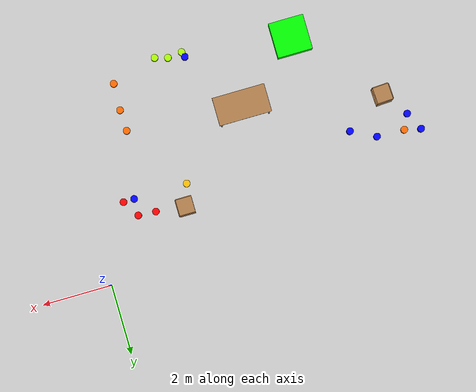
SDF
<sdf version="1.6">
 <world name="default">
  <model name="ground_plane">
   <static>1</static>
   <link name="link">
    <collision name="collision">
     <geometry><plane><normal>0 0 1</normal><size>100 100</size></plane></geometry>
     <surface>
      <contact><collide_bitmask>65535</collide_bitmask></contact>
      <friction><ode><mu>100</mu><mu2>50</mu2></ode></friction>
     </surface>
    </collision>
    <visual name="visual">
     <cast_shadows>0</cast_shadows>
     <geometry><plane><normal>0 0 1</normal><size>100 100</size></plane></geometry>
     <material>
      <script><uri>file://media/materials/scripts/gazebo.material</uri><name>Gazebo/Grey</name></script>
     </material>
    </visual>
   </link>
  </model>
  <model name="green_box">
   <link name="link_0">
    <inertial>
     <mass>1</mass>
     <inertia>
      <ixx>0.166667</ixx>
      <ixy>0</ixy>
      <ixz>0</ixz>
      <iyy>0.166667</iyy>
      <iyz>0</iyz>
      <izz>0.166667</izz>
     </inertia>
    </inertial>
    <visual name="visual">
     <geometry><box><size>1 0.999998 1</size></box></geometry>
     <material>
      <lighting>1</lighting>
      <script><uri>file://media/materials/scripts/gazebo.material</uri><name>Gazebo/Grey</name></script>
      <shader type="vertex"><normal_map>__default__</normal_map></shader>
      <ambient>0 1 0 1</ambient>
      <diffuse>0 1 0 1</diffuse>
      <specular>0 1 0 1</specular>
      <emissive>0 0 0 1</emissive>
     </material>
    </visual>
    <collision name="collision">
     <geometry><box><size>1 0.999998 1</size></box></geometry>
     <surface>
      <friction>
       <ode><mu>1</mu><mu2>1</mu2><fdir1>0 0 0</fdir1><slip1>0</slip1><slip2>0</slip2></ode>
       <torsional>
        <coefficient>1</coefficient>
        <patch_radius>0</patch_radius>
        <surface_radius>0</surface_radius>
        <use_patch_radius>1</use_patch_radius>
        <ode><slip>0</slip></ode>
       </torsional>
      </friction>
      <bounce><restitution_coefficient>0</restitution_coefficient><threshold>1e+06</threshold></bounce>
      <contact>
       <collide_without_contact>0</collide_without_contact>
       <collide_without_contact_bitmask>1</collide_without_contact_bitmask>
       <collide_bitmask>1</collide_bitmask>
       <ode>
        <soft_cfm>0</soft_cfm>
        <soft_erp>0.2</soft_erp>
        <kp>1e+13</kp>
        <kd>1</kd>
        <max_vel>0.01</max_vel>
        <min_depth>0</min_depth>
       </ode>
       <bullet>
        <split_impulse>1</split_impulse>
        <split_impulse_penetration_threshold>-0.01</split_impulse_penetration_threshold>
        <soft_cfm>0</soft_cfm>
        <soft_erp>0.2</soft_erp>
        <kp>1e+13</kp>
        <kd>1</kd>
       </bullet>
      </contact>
     </surface>
    </collision>
   </link>
   <static>1</static>
   <pose>-6.72017 -5.2953 0 0 -0 0</pose>
  </model>
  <model name="cabinet">
   <static>1</static>
   <link name="cabinet_bottom_plate">
    <inertial>
     <pose>0 0 -1 0 -0 0</pose>
     <inertia><ixx>2.05</ixx><ixy>0</ixy><ixz>0</ixz><iyy>2.05</iyy><iyz>0</iyz><izz>2.05</izz></inertia>
     <mass>25</mass>
    </inertial>
    <collision name="cabinet_bottom_plate_geom">
     <pose>0 0 0.01 0 -0 0</pose>
     <geometry><box><size>0.45 0.45 0.02</size></box></geometry>
    </collision>
    <visual name="cabinet_bottom_plate_geom_visual">
     <pose>0 0 0.01 0 -0 0</pose>
     <geometry><box><size>0.45 0.45 0.02</size></box></geometry>
     <material>
      <script><uri>file://media/materials/scripts/gazebo.material</uri><name>Gazebo/Wood</name></script>
     </material>
    </visual>
    <collision name="cabinet_bottom_plate_geom_cabinet_back_plate">
     <pose>0.235 0 0.51 0 -0 0</pose>
     <geometry><box><size>0.02 0.45 1.02</size></box></geometry>
    </collision>
    <visual name="cabinet_bottom_plate_geom_cabinet_back_plate_visual">
     <pose>0.235 0 0.51 0 -0 0</pose>
     <geometry><box><size>0.02 0.45 1.02</size></box></geometry>
     <material>
      <script><uri>file://media/materials/scripts/gazebo.material</uri><name>Gazebo/Wood</name></script>
     </material>
    </visual>
    <collision name="cabinet_bottom_plate_geom_cabinet_left_plate">
     <pose>0 0.235 0.51 0 -0 0</pose>
     <geometry><box><size>0.45 0.02 1.02</size></box></geometry>
    </collision>
    <visual name="cabinet_bottom_plate_geom_cabinet_left_plate_visual">
     <pose>0 0.235 0.51 0 -0 0</pose>
     <geometry><box><size>0.45 0.02 1.02</size></box></geometry>
     <material>
      <script><uri>file://media/materials/scripts/gazebo.material</uri><name>Gazebo/Wood</name></script>
     </material>
    </visual>
    <collision name="cabinet_bottom_plate_geom_cabinet_middle_plate">
     <pose>0 0 0.51 0 -0 0</pose>
     <geometry><box><size>0.45 0.45 0.02</size></box></geometry>
    </collision>
    <visual name="cabinet_bottom_plate_geom_cabinet_middle_plate_visual">
     <pose>0 0 0.51 0 -0 0</pose>
     <geometry><box><size>0.45 0.45 0.02</size></box></geometry>
     <material>
      <script><uri>file://media/materials/scripts/gazebo.material</uri><name>Gazebo/Wood</name></script>
     </material>
    </visual>
    <collision name="cabinet_bottom_plate_geom_cabinet_right_plate">
     <pose>0 -0.235 0.51 0 -0 0</pose>
     <geometry><box><size>0.45 0.02 1.02</size></box></geometry>
    </collision>
    <visual name="cabinet_bottom_plate_geom_cabinet_right_plate_visual">
     <pose>0 -0.235 0.51 0 -0 0</pose>
     <geometry><box><size>0.45 0.02 1.02</size></box></geometry>
     <material>
      <script><uri>file://media/materials/scripts/gazebo.material</uri><name>Gazebo/Wood</name></script>
     </material>
    </visual>
    <collision name="cabinet_bottom_plate_geom_cabinet_top_plate">
     <pose>0 0 1.01 0 -0 0</pose>
     <geometry><box><size>0.45 0.45 0.02</size></box></geometry>
    </collision>
    <visual name="cabinet_bottom_plate_geom_cabinet_top_plate_visual">
     <pose>0 0 1.01 0 -0 0</pose>
     <geometry><box><size>0.45 0.45 0.02</size></box></geometry>
     <material>
      <script><uri>file://media/materials/scripts/gazebo.material</uri><name>Gazebo/Wood</name></script>
     </material>
    </visual>
   </link>
   <pose>-2.59709 -1.54138 0 0 -0 0</pose>
  </model>
  <model name="cylinder_gy">
   <link name="link_0">
    <pose>0 0 0.1 0 -0 0</pose>
    <inertial>
     <mass>1</mass>
     <inertia><ixx>0.145833</ixx><ixy>0</ixy><ixz>0</ixz><iyy>0.145833</iyy><iyz>0</iyz><izz>0.125</izz></inertia>
    </inertial>
    <visual name="visual">
     <geometry><cylinder><radius>0.1</radius><length>0.2</length></cylinder></geometry>
     <material>
      <lighting>1</lighting>
      <script><uri>file://media/materials/scripts/gazebo.material</uri><name>Gazebo/Grey</name></script>
      <ambient>0.675 1 0 1</ambient>
      <diffuse>0.675 1 0 1</diffuse>
      <specular>0 0 0 1</specular>
      <emissive>0 0 0 1</emissive>
      <shader type="vertex"><normal_map>__default__</normal_map></shader>
     </material>
    </visual>
    <collision name="collision">
     <geometry><cylinder><radius>0.1</radius><length>0.2</length></cylinder></geometry>
     <surface>
      <friction>
       <ode><mu>1</mu><mu2>1</mu2><fdir1>0 0 0</fdir1><slip1>0</slip1><slip2>0</slip2></ode>
       <torsional>
        <coefficient>1</coefficient>
        <patch_radius>0</patch_radius>
        <surface_radius>0</surface_radius>
        <use_patch_radius>1</use_patch_radius>
        <ode><slip>0</slip></ode>
       </torsional>
      </friction>
      <bounce><restitution_coefficient>0</restitution_coefficient><threshold>1e+06</threshold></bounce>
      <contact>
       <collide_without_contact>0</collide_without_contact>
       <collide_without_contact_bitmask>1</collide_without_contact_bitmask>
       <collide_bitmask>1</collide_bitmask>
       <ode>
        <soft_cfm>0</soft_cfm>
        <soft_erp>0.2</soft_erp>
        <kp>1e+13</kp>
        <kd>1</kd>
        <max_vel>0.01</max_vel>
        <min_depth>0</min_depth>
       </ode>
       <bullet>
        <split_impulse>1</split_impulse>
        <split_impulse_penetration_threshold>-0.01</split_impulse_penetration_threshold>
        <soft_cfm>0</soft_cfm>
        <soft_erp>0.2</soft_erp>
        <kp>1e+13</kp>
        <kd>1</kd>
       </bullet>
      </contact>
     </surface>
    </collision>
   </link>
   <static>1</static>
   <pose>-3.27013 -5.68569 0 0 -0 0</pose>
  </model>
  <model name="cylinder_gy_0">
   <link name="link_0">
    <pose>0 0 0.1 0 -0 0</pose>
    <inertial>
     <mass>1</mass>
     <inertia><ixx>0.145833</ixx><ixy>0</ixy><ixz>0</ixz><iyy>0.145833</iyy><iyz>0</iyz><izz>0.125</izz></inertia>
    </inertial>
    <visual name="visual">
     <geometry><cylinder><radius>0.1</radius><length>0.2</length></cylinder></geometry>
     <material>
      <lighting>1</lighting>
      <script><uri>file://media/materials/scripts/gazebo.material</uri><name>Gazebo/Grey</name></script>
      <ambient>0.675 1 0 1</ambient>
      <diffuse>0.675 1 0 1</diffuse>
      <specular>0 0 0 1</specular>
      <emissive>0 0 0 1</emissive>
      <shader type="vertex"><normal_map>__default__</normal_map></shader>
     </material>
    </visual>
    <collision name="collision">
     <geometry><cylinder><radius>0.1</radius><length>0.2</length></cylinder></geometry>
     <surface>
      <friction>
       <ode><mu>1</mu><mu2>1</mu2><fdir1>0 0 0</fdir1><slip1>0</slip1><slip2>0</slip2></ode>
       <torsional>
        <coefficient>1</coefficient>
        <patch_radius>0</patch_radius>
        <surface_radius>0</surface_radius>
        <use_patch_radius>1</use_patch_radius>
        <ode><slip>0</slip></ode>
       </torsional>
      </friction>
      <bounce><restitution_coefficient>0</restitution_coefficient><threshold>1e+06</threshold></bounce>
      <contact>
       <collide_without_contact>0</collide_without_contact>
       <collide_without_contact_bitmask>1</collide_without_contact_bitmask>
       <collide_bitmask>1</collide_bitmask>
       <ode>
        <soft_cfm>0</soft_cfm>
        <soft_erp>0.2</soft_erp>
        <kp>1e+13</kp>
        <kd>1</kd>
        <max_vel>0.01</max_vel>
        <min_depth>0</min_depth>
       </ode>
       <bullet>
        <split_impulse>1</split_impulse>
        <split_impulse_penetration_threshold>-0.01</split_impulse_penetration_threshold>
        <soft_cfm>0</soft_cfm>
        <soft_erp>0.2</soft_erp>
        <kp>1e+13</kp>
        <kd>1</kd>
       </bullet>
      </contact>
     </surface>
    </collision>
   </link>
   <static>1</static>
   <pose>-3.68138 -5.73582 0 0 -0 0</pose>
  </model>
  <model name="cylinder_gy_1">
   <link name="link_0">
    <pose>0 0 0.1 0 -0 0</pose>
    <inertial>
     <mass>1</mass>
     <inertia><ixx>0.145833</ixx><ixy>0</ixy><ixz>0</ixz><iyy>0.145833</iyy><iyz>0</iyz><izz>0.125</izz></inertia>
    </inertial>
    <visual name="visual">
     <geometry><cylinder><radius>0.1</radius><length>0.2</length></cylinder></geometry>
     <material>
      <lighting>1</lighting>
      <script><uri>file://media/materials/scripts/gazebo.material</uri><name>Gazebo/Grey</name></script>
      <ambient>0.675 1 0 1</ambient>
      <diffuse>0.675 1 0 1</diffuse>
      <specular>0 0 0 1</specular>
      <emissive>0 0 0 1</emissive>
      <shader type="vertex"><normal_map>__default__</normal_map></shader>
     </material>
    </visual>
    <collision name="collision">
     <geometry><cylinder><radius>0.1</radius><length>0.2</length></cylinder></geometry>
     <surface>
      <friction>
       <ode><mu>1</mu><mu2>1</mu2><fdir1>0 0 0</fdir1><slip1>0</slip1><slip2>0</slip2></ode>
       <torsional>
        <coefficient>1</coefficient>
        <patch_radius>0</patch_radius>
        <surface_radius>0</surface_radius>
        <use_patch_radius>1</use_patch_radius>
        <ode><slip>0</slip></ode>
       </torsional>
      </friction>
      <bounce><restitution_coefficient>0</restitution_coefficient><threshold>1e+06</threshold></bounce>
      <contact>
       <collide_without_contact>0</collide_without_contact>
       <collide_without_contact_bitmask>1</collide_without_contact_bitmask>
       <collide_bitmask>1</collide_bitmask>
       <ode>
        <soft_cfm>0</soft_cfm>
        <soft_erp>0.2</soft_erp>
        <kp>1e+13</kp>
        <kd>1</kd>
        <max_vel>0.01</max_vel>
        <min_depth>0</min_depth>
       </ode>
       <bullet>
        <split_impulse>1</split_impulse>
        <split_impulse_penetration_threshold>-0.01</split_impulse_penetration_threshold>
        <soft_cfm>0</soft_cfm>
        <soft_erp>0.2</soft_erp>
        <kp>1e+13</kp>
        <kd>1</kd>
       </bullet>
      </contact>
     </surface>
    </collision>
   </link>
   <static>1</static>
   <pose>-2.91071 -5.78947 0 0 -0 0</pose>
  </model>
  <model name="cylinder_b_0">
   <link name="link_0">
    <pose>0 0 0.1 0 -0 0</pose>
    <inertial>
     <mass>1</mass>
     <inertia><ixx>0.145833</ixx><ixy>0</ixy><ixz>0</ixz><iyy>0.145833</iyy><iyz>0</iyz><izz>0.125</izz></inertia>
    </inertial>
    <visual name="visual">
     <geometry><cylinder><radius>0.1</radius><length>0.2</length></cylinder></geometry>
     <material>
      <lighting>1</lighting>
      <script><uri>file://media/materials/scripts/gazebo.material</uri><name>Gazebo/Grey</name></script>
      <ambient>0 0 1 1</ambient>
      <diffuse>0 0 1 1</diffuse>
      <specular>0 0 0 1</specular>
      <emissive>0 0 0 1</emissive>
      <shader type="vertex"><normal_map>__default__</normal_map></shader>
     </material>
    </visual>
    <collision name="collision">
     <geometry><cylinder><radius>0.1</radius><length>0.2</length></cylinder></geometry>
     <surface>
      <friction>
       <ode><mu>1</mu><mu2>1</mu2><fdir1>0 0 0</fdir1><slip1>0</slip1><slip2>0</slip2></ode>
       <torsional>
        <coefficient>1</coefficient>
        <patch_radius>0</patch_radius>
        <surface_radius>0</surface_radius>
        <use_patch_radius>1</use_patch_radius>
        <ode><slip>0</slip></ode>
       </torsional>
      </friction>
      <bounce><restitution_coefficient>0</restitution_coefficient><threshold>1e+06</threshold></bounce>
      <contact>
       <collide_without_contact>0</collide_without_contact>
       <collide_without_contact_bitmask>1</collide_without_contact_bitmask>
       <collide_bitmask>1</collide_bitmask>
       <ode>
        <soft_cfm>0</soft_cfm>
        <soft_erp>0.2</soft_erp>
        <kp>1e+13</kp>
        <kd>1</kd>
        <max_vel>0.01</max_vel>
        <min_depth>0</min_depth>
       </ode>
       <bullet>
        <split_impulse>1</split_impulse>
        <split_impulse_penetration_threshold>-0.01</split_impulse_penetration_threshold>
        <soft_cfm>0</soft_cfm>
        <soft_erp>0.2</soft_erp>
        <kp>1e+13</kp>
        <kd>1</kd>
       </bullet>
      </contact>
     </surface>
    </collision>
   </link>
   <static>1</static>
   <pose>-3.73233 -5.58165 0 0 -0 0</pose>
  </model>
  <model name="cylinder_b_1">
   <link name="link_0">
    <pose>0 0 0.1 0 -0 0</pose>
    <inertial>
     <mass>1</mass>
     <inertia><ixx>0.145833</ixx><ixy>0</ixy><ixz>0</ixz><iyy>0.145833</iyy><iyz>0</iyz><izz>0.125</izz></inertia>
    </inertial>
    <visual name="visual">
     <geometry><cylinder><radius>0.1</radius><length>0.2</length></cylinder></geometry>
     <material>
      <lighting>1</lighting>
      <script><uri>file://media/materials/scripts/gazebo.material</uri><name>Gazebo/Grey</name></script>
      <ambient>0 0 1 1</ambient>
      <diffuse>0 0 1 1</diffuse>
      <specular>0 0 0 1</specular>
      <emissive>0 0 0 1</emissive>
      <shader type="vertex"><normal_map>__default__</normal_map></shader>
     </material>
    </visual>
    <collision name="collision">
     <geometry><cylinder><radius>0.1</radius><length>0.2</length></cylinder></geometry>
     <surface>
      <friction>
       <ode><mu>1</mu><mu2>1</mu2><fdir1>0 0 0</fdir1><slip1>0</slip1><slip2>0</slip2></ode>
       <torsional>
        <coefficient>1</coefficient>
        <patch_radius>0</patch_radius>
        <surface_radius>0</surface_radius>
        <use_patch_radius>1</use_patch_radius>
        <ode><slip>0</slip></ode>
       </torsional>
      </friction>
      <bounce><restitution_coefficient>0</restitution_coefficient><threshold>1e+06</threshold></bounce>
      <contact>
       <collide_without_contact>0</collide_without_contact>
       <collide_without_contact_bitmask>1</collide_without_contact_bitmask>
       <collide_bitmask>1</collide_bitmask>
       <ode>
        <soft_cfm>0</soft_cfm>
        <soft_erp>0.2</soft_erp>
        <kp>1e+13</kp>
        <kd>1</kd>
        <max_vel>0.01</max_vel>
        <min_depth>0</min_depth>
       </ode>
       <bullet>
        <split_impulse>1</split_impulse>
        <split_impulse_penetration_threshold>-0.01</split_impulse_penetration_threshold>
        <soft_cfm>0</soft_cfm>
        <soft_erp>0.2</soft_erp>
        <kp>1e+13</kp>
        <kd>1</kd>
       </bullet>
      </contact>
     </surface>
    </collision>
   </link>
   <static>1</static>
   <pose>-9.27324 -2.3282 0 0 -0 0</pose>
  </model>
  <model name="cylinder_b_2">
   <link name="link_0">
    <pose>0 0 0.1 0 -0 0</pose>
    <inertial>
     <mass>1</mass>
     <inertia><ixx>0.145833</ixx><ixy>0</ixy><ixz>0</ixz><iyy>0.145833</iyy><iyz>0</iyz><izz>0.125</izz></inertia>
    </inertial>
    <visual name="visual">
     <geometry><cylinder><radius>0.1</radius><length>0.2</length></cylinder></geometry>
     <material>
      <lighting>1</lighting>
      <script><uri>file://media/materials/scripts/gazebo.material</uri><name>Gazebo/Grey</name></script>
      <ambient>0 0 1 1</ambient>
      <diffuse>0 0 1 1</diffuse>
      <specular>0 0 0 1</specular>
      <emissive>0 0 0 1</emissive>
      <shader type="vertex"><normal_map>__default__</normal_map></shader>
     </material>
    </visual>
    <collision name="collision">
     <geometry><cylinder><radius>0.1</radius><length>0.2</length></cylinder></geometry>
     <surface>
      <friction>
       <ode><mu>1</mu><mu2>1</mu2><fdir1>0 0 0</fdir1><slip1>0</slip1><slip2>0</slip2></ode>
       <torsional>
        <coefficient>1</coefficient>
        <patch_radius>0</patch_radius>
        <surface_radius>0</surface_radius>
        <use_patch_radius>1</use_patch_radius>
        <ode><slip>0</slip></ode>
       </torsional>
      </friction>
      <bounce><restitution_coefficient>0</restitution_coefficient><threshold>1e+06</threshold></bounce>
      <contact>
       <collide_without_contact>0</collide_without_contact>
       <collide_without_contact_bitmask>1</collide_without_contact_bitmask>
       <collide_bitmask>1</collide_bitmask>
       <ode>
        <soft_cfm>0</soft_cfm>
        <soft_erp>0.2</soft_erp>
        <kp>1e+13</kp>
        <kd>1</kd>
        <max_vel>0.01</max_vel>
        <min_depth>0</min_depth>
       </ode>
       <bullet>
        <split_impulse>1</split_impulse>
        <split_impulse_penetration_threshold>-0.01</split_impulse_penetration_threshold>
        <soft_cfm>0</soft_cfm>
        <soft_erp>0.2</soft_erp>
        <kp>1e+13</kp>
        <kd>1</kd>
       </bullet>
      </contact>
     </surface>
    </collision>
   </link>
   <static>1</static>
   <pose>-9.52865 -1.81358 0 0 -0 0</pose>
  </model>
  <model name="cylinder_or_0">
   <link name="link_0">
    <pose>0 0 0.1 0 -0 0</pose>
    <inertial>
     <mass>1</mass>
     <inertia><ixx>0.145833</ixx><ixy>0</ixy><ixz>0</ixz><iyy>0.145833</iyy><iyz>0</iyz><izz>0.125</izz></inertia>
    </inertial>
    <visual name="visual">
     <geometry><cylinder><radius>0.1</radius><length>0.2</length></cylinder></geometry>
     <material>
      <lighting>1</lighting>
      <script><uri>file://media/materials/scripts/gazebo.material</uri><name>Gazebo/Grey</name></script>
      <ambient>1 0.416 0 1</ambient>
      <diffuse>1 0.416 0 1</diffuse>
      <specular>0 0 0 1</specular>
      <emissive>0 0 0 1</emissive>
      <shader type="vertex"><normal_map>__default__</normal_map></shader>
     </material>
    </visual>
    <collision name="collision">
     <geometry><cylinder><radius>0.1</radius><length>0.2</length></cylinder></geometry>
     <surface>
      <friction>
       <ode><mu>1</mu><mu2>1</mu2><fdir1>0 0 0</fdir1><slip1>0</slip1><slip2>0</slip2></ode>
       <torsional>
        <coefficient>1</coefficient>
        <patch_radius>0</patch_radius>
        <surface_radius>0</surface_radius>
        <use_patch_radius>1</use_patch_radius>
        <ode><slip>0</slip></ode>
       </torsional>
      </friction>
      <bounce><restitution_coefficient>0</restitution_coefficient><threshold>1e+06</threshold></bounce>
      <contact>
       <collide_without_contact>0</collide_without_contact>
       <collide_without_contact_bitmask>1</collide_without_contact_bitmask>
       <collide_bitmask>1</collide_bitmask>
       <ode>
        <soft_cfm>0</soft_cfm>
        <soft_erp>0.2</soft_erp>
        <kp>1e+13</kp>
        <kd>1</kd>
        <max_vel>0.01</max_vel>
        <min_depth>0</min_depth>
       </ode>
       <bullet>
        <split_impulse>1</split_impulse>
        <split_impulse_penetration_threshold>-0.01</split_impulse_penetration_threshold>
        <soft_cfm>0</soft_cfm>
        <soft_erp>0.2</soft_erp>
        <kp>1e+13</kp>
        <kd>1</kd>
       </bullet>
      </contact>
     </surface>
    </collision>
   </link>
   <static>1</static>
   <pose>-9.0664 -1.91762 0 0 -0 0</pose>
  </model>
  <model name="cylinder_r_0">
   <link name="link_0">
    <pose>0 0 0.1 0 -0 0</pose>
    <inertial>
     <mass>1</mass>
     <inertia><ixx>0.145833</ixx><ixy>0</ixy><ixz>0</ixz><iyy>0.145833</iyy><iyz>0</iyz><izz>0.125</izz></inertia>
    </inertial>
    <visual name="visual">
     <geometry><cylinder><radius>0.1</radius><length>0.2</length></cylinder></geometry>
     <material>
      <lighting>1</lighting>
      <script><uri>file://media/materials/scripts/gazebo.material</uri><name>Gazebo/Grey</name></script>
      <ambient>1 0 0 1</ambient>
      <diffuse>1 0 0 1</diffuse>
      <specular>0 0 0 1</specular>
      <emissive>0 0 0 1</emissive>
      <shader type="vertex"><normal_map>__default__</normal_map></shader>
     </material>
    </visual>
    <collision name="collision">
     <geometry><cylinder><radius>0.1</radius><length>0.2</length></cylinder></geometry>
     <surface>
      <friction>
       <ode><mu>1</mu><mu2>1</mu2><fdir1>0 0 0</fdir1><slip1>0</slip1><slip2>0</slip2></ode>
       <torsional>
        <coefficient>1</coefficient>
        <patch_radius>0</patch_radius>
        <surface_radius>0</surface_radius>
        <use_patch_radius>1</use_patch_radius>
        <ode><slip>0</slip></ode>
       </torsional>
      </friction>
      <bounce><restitution_coefficient>0</restitution_coefficient><threshold>1e+06</threshold></bounce>
      <contact>
       <collide_without_contact>0</collide_without_contact>
       <collide_without_contact_bitmask>1</collide_without_contact_bitmask>
       <collide_bitmask>1</collide_bitmask>
       <ode>
        <soft_cfm>0</soft_cfm>
        <soft_erp>0.2</soft_erp>
        <kp>1e+13</kp>
        <kd>1</kd>
        <max_vel>0.01</max_vel>
        <min_depth>0</min_depth>
       </ode>
       <bullet>
        <split_impulse>1</split_impulse>
        <split_impulse_penetration_threshold>-0.01</split_impulse_penetration_threshold>
        <soft_cfm>0</soft_cfm>
        <soft_erp>0.2</soft_erp>
        <kp>1e+13</kp>
        <kd>1</kd>
       </bullet>
      </contact>
     </surface>
    </collision>
   </link>
   <static>1</static>
   <pose>-1.75799 -1.64161 0 0 -0 0</pose>
  </model>
  <model name="cylinder_r_1">
   <link name="link_0">
    <pose>0 0 0.1 0 -0 0</pose>
    <inertial>
     <mass>1</mass>
     <inertia><ixx>0.145833</ixx><ixy>0</ixy><ixz>0</ixz><iyy>0.145833</iyy><iyz>0</iyz><izz>0.125</izz></inertia>
    </inertial>
    <visual name="visual">
     <geometry><cylinder><radius>0.1</radius><length>0.2</length></cylinder></geometry>
     <material>
      <lighting>1</lighting>
      <script><uri>file://media/materials/scripts/gazebo.material</uri><name>Gazebo/Grey</name></script>
      <ambient>1 0 0 1</ambient>
      <diffuse>1 0 0 1</diffuse>
      <specular>0 0 0 1</specular>
      <emissive>0 0 0 1</emissive>
      <shader type="vertex"><normal_map>__default__</normal_map></shader>
     </material>
    </visual>
    <collision name="collision">
     <geometry><cylinder><radius>0.1</radius><length>0.2</length></cylinder></geometry>
     <surface>
      <friction>
       <ode><mu>1</mu><mu2>1</mu2><fdir1>0 0 0</fdir1><slip1>0</slip1><slip2>0</slip2></ode>
       <torsional>
        <coefficient>1</coefficient>
        <patch_radius>0</patch_radius>
        <surface_radius>0</surface_radius>
        <use_patch_radius>1</use_patch_radius>
        <ode><slip>0</slip></ode>
       </torsional>
      </friction>
      <bounce><restitution_coefficient>0</restitution_coefficient><threshold>1e+06</threshold></bounce>
      <contact>
       <collide_without_contact>0</collide_without_contact>
       <collide_without_contact_bitmask>1</collide_without_contact_bitmask>
       <collide_bitmask>1</collide_bitmask>
       <ode>
        <soft_cfm>0</soft_cfm>
        <soft_erp>0.2</soft_erp>
        <kp>1e+13</kp>
        <kd>1</kd>
        <max_vel>0.01</max_vel>
        <min_depth>0</min_depth>
       </ode>
       <bullet>
        <split_impulse>1</split_impulse>
        <split_impulse_penetration_threshold>-0.01</split_impulse_penetration_threshold>
        <soft_cfm>0</soft_cfm>
        <soft_erp>0.2</soft_erp>
        <kp>1e+13</kp>
        <kd>1</kd>
       </bullet>
      </contact>
     </surface>
    </collision>
   </link>
   <static>1</static>
   <pose>-1.25466 -1.67457 0 0 -0 0</pose>
  </model>
  <model name="cylinder_yo_1">
   <link name="link_0">
    <pose>0 0 0.1 0 -0 0</pose>
    <inertial>
     <mass>1</mass>
     <inertia><ixx>0.145833</ixx><ixy>0</ixy><ixz>0</ixz><iyy>0.145833</iyy><iyz>0</iyz><izz>0.125</izz></inertia>
    </inertial>
    <visual name="visual">
     <geometry><cylinder><radius>0.1</radius><length>0.2</length></cylinder></geometry>
     <material>
      <lighting>1</lighting>
      <script><uri>file://media/materials/scripts/gazebo.material</uri><name>Gazebo/Grey</name></script>
      <ambient>1 0.749 0 1</ambient>
      <diffuse>1 0.749 0 1</diffuse>
      <specular>0 0 0 1</specular>
      <emissive>0 0 0 1</emissive>
      <shader type="vertex"><normal_map>__default__</normal_map></shader>
     </material>
    </visual>
    <collision name="collision">
     <geometry><cylinder><radius>0.1</radius><length>0.2</length></cylinder></geometry>
     <surface>
      <friction>
       <ode><mu>1</mu><mu2>1</mu2><fdir1>0 0 0</fdir1><slip1>0</slip1><slip2>0</slip2></ode>
       <torsional>
        <coefficient>1</coefficient>
        <patch_radius>0</patch_radius>
        <surface_radius>0</surface_radius>
        <use_patch_radius>1</use_patch_radius>
        <ode><slip>0</slip></ode>
       </torsional>
      </friction>
      <bounce><restitution_coefficient>0</restitution_coefficient><threshold>1e+06</threshold></bounce>
      <contact>
       <collide_without_contact>0</collide_without_contact>
       <collide_without_contact_bitmask>1</collide_without_contact_bitmask>
       <collide_bitmask>1</collide_bitmask>
       <ode>
        <soft_cfm>0</soft_cfm>
        <soft_erp>0.2</soft_erp>
        <kp>1e+13</kp>
        <kd>1</kd>
        <max_vel>0.01</max_vel>
        <min_depth>0</min_depth>
       </ode>
       <bullet>
        <split_impulse>1</split_impulse>
        <split_impulse_penetration_threshold>-0.01</split_impulse_penetration_threshold>
        <soft_cfm>0</soft_cfm>
        <soft_erp>0.2</soft_erp>
        <kp>1e+13</kp>
        <kd>1</kd>
       </bullet>
      </contact>
     </surface>
    </collision>
   </link>
   <static>1</static>
   <pose>-2.80026 -2.15614 0 0 -0 0</pose>
  </model>
  <model name="cylinder_r_3">
   <link name="link_0">
    <pose>0 0 0.1 0 -0 0</pose>
    <inertial>
     <mass>1</mass>
     <inertia><ixx>0.145833</ixx><ixy>0</ixy><ixz>0</ixz><iyy>0.145833</iyy><iyz>0</iyz><izz>0.125</izz></inertia>
    </inertial>
    <visual name="visual">
     <geometry><cylinder><radius>0.1</radius><length>0.2</length></cylinder></geometry>
     <material>
      <lighting>1</lighting>
      <script><uri>file://media/materials/scripts/gazebo.material</uri><name>Gazebo/Grey</name></script>
      <ambient>1 0 0 1</ambient>
      <diffuse>1 0 0 1</diffuse>
      <specular>0 0 0 1</specular>
      <emissive>0 0 0 1</emissive>
      <shader type="vertex"><normal_map>__default__</normal_map></shader>
     </material>
    </visual>
    <collision name="collision">
     <geometry><cylinder><radius>0.1</radius><length>0.2</length></cylinder></geometry>
     <surface>
      <friction>
       <ode><mu>1</mu><mu2>1</mu2><fdir1>0 0 0</fdir1><slip1>0</slip1><slip2>0</slip2></ode>
       <torsional>
        <coefficient>1</coefficient>
        <patch_radius>0</patch_radius>
        <surface_radius>0</surface_radius>
        <use_patch_radius>1</use_patch_radius>
        <ode><slip>0</slip></ode>
       </torsional>
      </friction>
      <bounce><restitution_coefficient>0</restitution_coefficient><threshold>1e+06</threshold></bounce>
      <contact>
       <collide_without_contact>0</collide_without_contact>
       <collide_without_contact_bitmask>1</collide_without_contact_bitmask>
       <collide_bitmask>1</collide_bitmask>
       <ode>
        <soft_cfm>0</soft_cfm>
        <soft_erp>0.2</soft_erp>
        <kp>1e+13</kp>
        <kd>1</kd>
        <max_vel>0.01</max_vel>
        <min_depth>0</min_depth>
       </ode>
       <bullet>
        <split_impulse>1</split_impulse>
        <split_impulse_penetration_threshold>-0.01</split_impulse_penetration_threshold>
        <soft_cfm>0</soft_cfm>
        <soft_erp>0.2</soft_erp>
        <kp>1e+13</kp>
        <kd>1</kd>
       </bullet>
      </contact>
     </surface>
    </collision>
   </link>
   <static>1</static>
   <pose>-0.960176 -2.14784 0 0 -0 0</pose>
  </model>
  <model name="cylinder_b_9">
   <link name="link_0">
    <pose>0 0 0.1 0 -0 0</pose>
    <inertial>
     <mass>1</mass>
     <inertia><ixx>0.145833</ixx><ixy>0</ixy><ixz>0</ixz><iyy>0.145833</iyy><iyz>0</iyz><izz>0.125</izz></inertia>
    </inertial>
    <visual name="visual">
     <geometry><cylinder><radius>0.1</radius><length>0.2</length></cylinder></geometry>
     <material>
      <lighting>1</lighting>
      <script><uri>file://media/materials/scripts/gazebo.material</uri><name>Gazebo/Grey</name></script>
      <ambient>0 0 1 1</ambient>
      <diffuse>0 0 1 1</diffuse>
      <specular>0 0 0 1</specular>
      <emissive>0 0 0 1</emissive>
      <shader type="vertex"><normal_map>__default__</normal_map></shader>
     </material>
    </visual>
    <collision name="collision">
     <geometry><cylinder><radius>0.1</radius><length>0.2</length></cylinder></geometry>
     <surface>
      <friction>
       <ode><mu>1</mu><mu2>1</mu2><fdir1>0 0 0</fdir1><slip1>0</slip1><slip2>0</slip2></ode>
       <torsional>
        <coefficient>1</coefficient>
        <patch_radius>0</patch_radius>
        <surface_radius>0</surface_radius>
        <use_patch_radius>1</use_patch_radius>
        <ode><slip>0</slip></ode>
       </torsional>
      </friction>
      <bounce><restitution_coefficient>0</restitution_coefficient><threshold>1e+06</threshold></bounce>
      <contact>
       <collide_without_contact>0</collide_without_contact>
       <collide_without_contact_bitmask>1</collide_without_contact_bitmask>
       <collide_bitmask>1</collide_bitmask>
       <ode>
        <soft_cfm>0</soft_cfm>
        <soft_erp>0.2</soft_erp>
        <kp>1e+13</kp>
        <kd>1</kd>
        <max_vel>0.01</max_vel>
        <min_depth>0</min_depth>
       </ode>
       <bullet>
        <split_impulse>1</split_impulse>
        <split_impulse_penetration_threshold>-0.01</split_impulse_penetration_threshold>
        <soft_cfm>0</soft_cfm>
        <soft_erp>0.2</soft_erp>
        <kp>1e+13</kp>
        <kd>1</kd>
       </bullet>
      </contact>
     </surface>
    </collision>
   </link>
   <static>1</static>
   <pose>-1.26878 -2.15037 0 0 -0 0</pose>
  </model>
  <model name="cylinder_or_12">
   <link name="link_0">
    <pose>0 0 0.1 0 -0 0</pose>
    <inertial>
     <mass>1</mass>
     <inertia><ixx>0.145833</ixx><ixy>0</ixy><ixz>0</ixz><iyy>0.145833</iyy><iyz>0</iyz><izz>0.125</izz></inertia>
    </inertial>
    <visual name="visual">
     <geometry><cylinder><radius>0.1</radius><length>0.2</length></cylinder></geometry>
     <material>
      <lighting>1</lighting>
      <script><uri>file://media/materials/scripts/gazebo.material</uri><name>Gazebo/Grey</name></script>
      <ambient>1 0.416 0 1</ambient>
      <diffuse>1 0.416 0 1</diffuse>
      <specular>0 0 0 1</specular>
      <emissive>0 0 0 1</emissive>
      <shader type="vertex"><normal_map>__default__</normal_map></shader>
     </material>
    </visual>
    <collision name="collision">
     <geometry><cylinder><radius>0.1</radius><length>0.2</length></cylinder></geometry>
     <surface>
      <friction>
       <ode><mu>1</mu><mu2>1</mu2><fdir1>0 0 0</fdir1><slip1>0</slip1><slip2>0</slip2></ode>
       <torsional>
        <coefficient>1</coefficient>
        <patch_radius>0</patch_radius>
        <surface_radius>0</surface_radius>
        <use_patch_radius>1</use_patch_radius>
        <ode><slip>0</slip></ode>
       </torsional>
      </friction>
      <bounce><restitution_coefficient>0</restitution_coefficient><threshold>1e+06</threshold></bounce>
      <contact>
       <collide_without_contact>0</collide_without_contact>
       <collide_without_contact_bitmask>1</collide_without_contact_bitmask>
       <collide_bitmask>1</collide_bitmask>
       <ode>
        <soft_cfm>0</soft_cfm>
        <soft_erp>0.2</soft_erp>
        <kp>1e+13</kp>
        <kd>1</kd>
        <max_vel>0.01</max_vel>
        <min_depth>0</min_depth>
       </ode>
       <bullet>
        <split_impulse>1</split_impulse>
        <split_impulse_penetration_threshold>-0.01</split_impulse_penetration_threshold>
        <soft_cfm>0</soft_cfm>
        <soft_erp>0.2</soft_erp>
        <kp>1e+13</kp>
        <kd>1</kd>
       </bullet>
      </contact>
     </surface>
    </collision>
   </link>
   <static>1</static>
   <pose>-1.59828 -4.04183 0 0 -0 0</pose>
  </model>
  <model name="cylinder_or_13">
   <link name="link_0">
    <pose>0 0 0.1 0 -0 0</pose>
    <inertial>
     <mass>1</mass>
     <inertia><ixx>0.145833</ixx><ixy>0</ixy><ixz>0</ixz><iyy>0.145833</iyy><iyz>0</iyz><izz>0.125</izz></inertia>
    </inertial>
    <visual name="visual">
     <geometry><cylinder><radius>0.1</radius><length>0.2</length></cylinder></geometry>
     <material>
      <lighting>1</lighting>
      <script><uri>file://media/materials/scripts/gazebo.material</uri><name>Gazebo/Grey</name></script>
      <ambient>1 0.416 0 1</ambient>
      <diffuse>1 0.416 0 1</diffuse>
      <specular>0 0 0 1</specular>
      <emissive>0 0 0 1</emissive>
      <shader type="vertex"><normal_map>__default__</normal_map></shader>
     </material>
    </visual>
    <collision name="collision">
     <geometry><cylinder><radius>0.1</radius><length>0.2</length></cylinder></geometry>
     <surface>
      <friction>
       <ode><mu>1</mu><mu2>1</mu2><fdir1>0 0 0</fdir1><slip1>0</slip1><slip2>0</slip2></ode>
       <torsional>
        <coefficient>1</coefficient>
        <patch_radius>0</patch_radius>
        <surface_radius>0</surface_radius>
        <use_patch_radius>1</use_patch_radius>
        <ode><slip>0</slip></ode>
       </torsional>
      </friction>
      <bounce><restitution_coefficient>0</restitution_coefficient><threshold>1e+06</threshold></bounce>
      <contact>
       <collide_without_contact>0</collide_without_contact>
       <collide_without_contact_bitmask>1</collide_without_contact_bitmask>
       <collide_bitmask>1</collide_bitmask>
       <ode>
        <soft_cfm>0</soft_cfm>
        <soft_erp>0.2</soft_erp>
        <kp>1e+13</kp>
        <kd>1</kd>
        <max_vel>0.01</max_vel>
        <min_depth>0</min_depth>
       </ode>
       <bullet>
        <split_impulse>1</split_impulse>
        <split_impulse_penetration_threshold>-0.01</split_impulse_penetration_threshold>
        <soft_cfm>0</soft_cfm>
        <soft_erp>0.2</soft_erp>
        <kp>1e+13</kp>
        <kd>1</kd>
       </bullet>
      </contact>
     </surface>
    </collision>
   </link>
   <static>1</static>
   <pose>-1.57797 -4.64545 0 0 -0 0</pose>
  </model>
  <model name="cylinder_or_14">
   <link name="link_0">
    <pose>0 0 0.1 0 -0 0</pose>
    <inertial>
     <mass>1</mass>
     <inertia><ixx>0.145833</ixx><ixy>0</ixy><ixz>0</ixz><iyy>0.145833</iyy><iyz>0</iyz><izz>0.125</izz></inertia>
    </inertial>
    <visual name="visual">
     <geometry><cylinder><radius>0.1</radius><length>0.2</length></cylinder></geometry>
     <material>
      <lighting>1</lighting>
      <script><uri>file://media/materials/scripts/gazebo.material</uri><name>Gazebo/Grey</name></script>
      <ambient>1 0.416 0 1</ambient>
      <diffuse>1 0.416 0 1</diffuse>
      <specular>0 0 0 1</specular>
      <emissive>0 0 0 1</emissive>
      <shader type="vertex"><normal_map>__default__</normal_map></shader>
     </material>
    </visual>
    <collision name="collision">
     <geometry><cylinder><radius>0.1</radius><length>0.2</length></cylinder></geometry>
     <surface>
      <friction>
       <ode><mu>1</mu><mu2>1</mu2><fdir1>0 0 0</fdir1><slip1>0</slip1><slip2>0</slip2></ode>
       <torsional>
        <coefficient>1</coefficient>
        <patch_radius>0</patch_radius>
        <surface_radius>0</surface_radius>
        <use_patch_radius>1</use_patch_radius>
        <ode><slip>0</slip></ode>
       </torsional>
      </friction>
      <bounce><restitution_coefficient>0</restitution_coefficient><threshold>1e+06</threshold></bounce>
      <contact>
       <collide_without_contact>0</collide_without_contact>
       <collide_without_contact_bitmask>1</collide_without_contact_bitmask>
       <collide_bitmask>1</collide_bitmask>
       <ode>
        <soft_cfm>0</soft_cfm>
        <soft_erp>0.2</soft_erp>
        <kp>1e+13</kp>
        <kd>1</kd>
        <max_vel>0.01</max_vel>
        <min_depth>0</min_depth>
       </ode>
       <bullet>
        <split_impulse>1</split_impulse>
        <split_impulse_penetration_threshold>-0.01</split_impulse_penetration_threshold>
        <soft_cfm>0</soft_cfm>
        <soft_erp>0.2</soft_erp>
        <kp>1e+13</kp>
        <kd>1</kd>
       </bullet>
      </contact>
     </surface>
    </collision>
   </link>
   <static>1</static>
   <pose>-1.61213 -5.40801 0 0 -0 0</pose>
  </model>
  <model name="cylinder_b_12">
   <link name="link_0">
    <pose>0 0 0.1 0 -0 0</pose>
    <inertial>
     <mass>1</mass>
     <inertia><ixx>0.145833</ixx><ixy>0</ixy><ixz>0</ixz><iyy>0.145833</iyy><iyz>0</iyz><izz>0.125</izz></inertia>
    </inertial>
    <visual name="visual">
     <geometry><cylinder><radius>0.1</radius><length>0.2</length></cylinder></geometry>
     <material>
      <lighting>1</lighting>
      <script><uri>file://media/materials/scripts/gazebo.material</uri><name>Gazebo/Grey</name></script>
      <ambient>0 0 1 1</ambient>
      <diffuse>0 0 1 1</diffuse>
      <specular>0 0 0 1</specular>
      <emissive>0 0 0 1</emissive>
      <shader type="vertex"><normal_map>__default__</normal_map></shader>
     </material>
    </visual>
    <collision name="collision">
     <geometry><cylinder><radius>0.1</radius><length>0.2</length></cylinder></geometry>
     <surface>
      <friction>
       <ode><mu>1</mu><mu2>1</mu2><fdir1>0 0 0</fdir1><slip1>0</slip1><slip2>0</slip2></ode>
       <torsional>
        <coefficient>1</coefficient>
        <patch_radius>0</patch_radius>
        <surface_radius>0</surface_radius>
        <use_patch_radius>1</use_patch_radius>
        <ode><slip>0</slip></ode>
       </torsional>
      </friction>
      <bounce><restitution_coefficient>0</restitution_coefficient><threshold>1e+06</threshold></bounce>
      <contact>
       <collide_without_contact>0</collide_without_contact>
       <collide_without_contact_bitmask>1</collide_without_contact_bitmask>
       <collide_bitmask>1</collide_bitmask>
       <ode>
        <soft_cfm>0</soft_cfm>
        <soft_erp>0.2</soft_erp>
        <kp>1e+13</kp>
        <kd>1</kd>
        <max_vel>0.01</max_vel>
        <min_depth>0</min_depth>
       </ode>
       <bullet>
        <split_impulse>1</split_impulse>
        <split_impulse_penetration_threshold>-0.01</split_impulse_penetration_threshold>
        <soft_cfm>0</soft_cfm>
        <soft_erp>0.2</soft_erp>
        <kp>1e+13</kp>
        <kd>1</kd>
       </bullet>
      </contact>
     </surface>
    </collision>
   </link>
   <static>1</static>
   <pose>-8.28309 -1.94114 0 0 -0 0</pose>
  </model>
  <model name="cylinder_b_15">
   <link name="link_0">
    <pose>0 0 0.1 0 -0 0</pose>
    <inertial>
     <mass>1</mass>
     <inertia><ixx>0.145833</ixx><ixy>0</ixy><ixz>0</ixz><iyy>0.145833</iyy><iyz>0</iyz><izz>0.125</izz></inertia>
    </inertial>
    <visual name="visual">
     <geometry><cylinder><radius>0.1</radius><length>0.2</length></cylinder></geometry>
     <material>
      <lighting>1</lighting>
      <script><uri>file://media/materials/scripts/gazebo.material</uri><name>Gazebo/Grey</name></script>
      <ambient>0 0 1 1</ambient>
      <diffuse>0 0 1 1</diffuse>
      <specular>0 0 0 1</specular>
      <emissive>0 0 0 1</emissive>
      <shader type="vertex"><normal_map>__default__</normal_map></shader>
     </material>
    </visual>
    <collision name="collision">
     <geometry><cylinder><radius>0.1</radius><length>0.2</length></cylinder></geometry>
     <surface>
      <friction>
       <ode><mu>1</mu><mu2>1</mu2><fdir1>0 0 0</fdir1><slip1>0</slip1><slip2>0</slip2></ode>
       <torsional>
        <coefficient>1</coefficient>
        <patch_radius>0</patch_radius>
        <surface_radius>0</surface_radius>
        <use_patch_radius>1</use_patch_radius>
        <ode><slip>0</slip></ode>
       </torsional>
      </friction>
      <bounce><restitution_coefficient>0</restitution_coefficient><threshold>1e+06</threshold></bounce>
      <contact>
       <collide_without_contact>0</collide_without_contact>
       <collide_without_contact_bitmask>1</collide_without_contact_bitmask>
       <collide_bitmask>1</collide_bitmask>
       <ode>
        <soft_cfm>0</soft_cfm>
        <soft_erp>0.2</soft_erp>
        <kp>1e+13</kp>
        <kd>1</kd>
        <max_vel>0.01</max_vel>
        <min_depth>0</min_depth>
       </ode>
       <bullet>
        <split_impulse>1</split_impulse>
        <split_impulse_penetration_threshold>-0.01</split_impulse_penetration_threshold>
        <soft_cfm>0</soft_cfm>
        <soft_erp>0.2</soft_erp>
        <kp>1e+13</kp>
        <kd>1</kd>
       </bullet>
      </contact>
     </surface>
    </collision>
   </link>
   <static>1</static>
   <pose>-7.59745 -2.29635 0 0 -0 0</pose>
  </model>
  <model name="cabinet_7">
   <static>1</static>
   <link name="cabinet_bottom_plate">
    <inertial>
     <pose>0 0 -1 0 -0 0</pose>
     <inertia><ixx>2.05</ixx><ixy>0</ixy><ixz>0</ixz><iyy>2.05</iyy><iyz>0</iyz><izz>2.05</izz></inertia>
     <mass>25</mass>
    </inertial>
    <collision name="cabinet_bottom_plate_geom">
     <pose>0 0 0.01 0 -0 0</pose>
     <geometry><box><size>0.45 0.45 0.02</size></box></geometry>
    </collision>
    <visual name="cabinet_bottom_plate_geom_visual">
     <pose>0 0 0.01 0 -0 0</pose>
     <geometry><box><size>0.45 0.45 0.02</size></box></geometry>
     <material>
      <script><uri>file://media/materials/scripts/gazebo.material</uri><name>Gazebo/Wood</name></script>
     </material>
    </visual>
    <collision name="cabinet_bottom_plate_geom_cabinet_back_plate">
     <pose>0.235 0 0.51 0 -0 0</pose>
     <geometry><box><size>0.02 0.45 1.02</size></box></geometry>
    </collision>
    <visual name="cabinet_bottom_plate_geom_cabinet_back_plate_visual">
     <pose>0.235 0 0.51 0 -0 0</pose>
     <geometry><box><size>0.02 0.45 1.02</size></box></geometry>
     <material>
      <script><uri>file://media/materials/scripts/gazebo.material</uri><name>Gazebo/Wood</name></script>
     </material>
    </visual>
    <collision name="cabinet_bottom_plate_geom_cabinet_left_plate">
     <pose>0 0.235 0.51 0 -0 0</pose>
     <geometry><box><size>0.45 0.02 1.02</size></box></geometry>
    </collision>
    <visual name="cabinet_bottom_plate_geom_cabinet_left_plate_visual">
     <pose>0 0.235 0.51 0 -0 0</pose>
     <geometry><box><size>0.45 0.02 1.02</size></box></geometry>
     <material>
      <script><uri>file://media/materials/scripts/gazebo.material</uri><name>Gazebo/Wood</name></script>
     </material>
    </visual>
    <collision name="cabinet_bottom_plate_geom_cabinet_middle_plate">
     <pose>0 0 0.51 0 -0 0</pose>
     <geometry><box><size>0.45 0.45 0.02</size></box></geometry>
    </collision>
    <visual name="cabinet_bottom_plate_geom_cabinet_middle_plate_visual">
     <pose>0 0 0.51 0 -0 0</pose>
     <geometry><box><size>0.45 0.45 0.02</size></box></geometry>
     <material>
      <script><uri>file://media/materials/scripts/gazebo.material</uri><name>Gazebo/Wood</name></script>
     </material>
    </visual>
    <collision name="cabinet_bottom_plate_geom_cabinet_right_plate">
     <pose>0 -0.235 0.51 0 -0 0</pose>
     <geometry><box><size>0.45 0.02 1.02</size></box></geometry>
    </collision>
    <visual name="cabinet_bottom_plate_geom_cabinet_right_plate_visual">
     <pose>0 -0.235 0.51 0 -0 0</pose>
     <geometry><box><size>0.45 0.02 1.02</size></box></geometry>
     <material>
      <script><uri>file://media/materials/scripts/gazebo.material</uri><name>Gazebo/Wood</name></script>
     </material>
    </visual>
    <collision name="cabinet_bottom_plate_geom_cabinet_top_plate">
     <pose>0 0 1.01 0 -0 0</pose>
     <geometry><box><size>0.45 0.45 0.02</size></box></geometry>
    </collision>
    <visual name="cabinet_bottom_plate_geom_cabinet_top_plate_visual">
     <pose>0 0 1.01 0 -0 0</pose>
     <geometry><box><size>0.45 0.45 0.02</size></box></geometry>
     <material>
      <script><uri>file://media/materials/scripts/gazebo.material</uri><name>Gazebo/Wood</name></script>
     </material>
    </visual>
   </link>
   <pose>-8.7137 -3.01664 0 0 0 -3.09083</pose>
  </model>
  <model name="table_4">
   <static>1</static>
   <link name="link">
    <collision name="surface">
     <pose>0 0 1 0 -0 0</pose>
     <geometry><box><size>1.5 0.8 0.03</size></box></geometry>
     <surface><friction><ode><mu>0.6</mu><mu2>0.6</mu2></ode></friction></surface>
    </collision>
    <visual name="visual1">
     <pose>0 0 1 0 -0 0</pose>
     <geometry><box><size>1.5 0.8 0.03</size></box></geometry>
     <material>
      <script><uri>file://media/materials/scripts/gazebo.material</uri><name>Gazebo/Wood</name></script>
     </material>
    </visual>
    <collision name="front_left_leg">
     <pose>0.68 0.38 0.5 0 -0 0</pose>
     <geometry><cylinder><radius>0.02</radius><length>1</length></cylinder></geometry>
    </collision>
    <visual name="front_left_leg">
     <pose>0.68 0.38 0.5 0 -0 0</pose>
     <geometry><cylinder><radius>0.02</radius><length>1</length></cylinder></geometry>
     <material>
      <script><uri>file://media/materials/scripts/gazebo.material</uri><name>Gazebo/Grey</name></script>
     </material>
    </visual>
    <collision name="front_right_leg">
     <pose>0.68 -0.38 0.5 0 -0 0</pose>
     <geometry><cylinder><radius>0.02</radius><length>1</length></cylinder></geometry>
    </collision>
    <visual name="front_right_leg">
     <pose>0.68 -0.38 0.5 0 -0 0</pose>
     <geometry><cylinder><radius>0.02</radius><length>1</length></cylinder></geometry>
     <material>
      <script><uri>file://media/materials/scripts/gazebo.material</uri><name>Gazebo/Grey</name></script>
     </material>
    </visual>
    <collision name="back_right_leg">
     <pose>-0.68 -0.38 0.5 0 -0 0</pose>
     <geometry><cylinder><radius>0.02</radius><length>1</length></cylinder></geometry>
    </collision>
    <visual name="back_right_leg">
     <pose>-0.68 -0.38 0.5 0 -0 0</pose>
     <geometry><cylinder><radius>0.02</radius><length>1</length></cylinder></geometry>
     <material>
      <script><uri>file://media/materials/scripts/gazebo.material</uri><name>Gazebo/Grey</name></script>
     </material>
    </visual>
    <collision name="back_left_leg">
     <pose>-0.68 0.38 0.5 0 -0 0</pose>
     <geometry><cylinder><radius>0.02</radius><length>1</length></cylinder></geometry>
    </collision>
    <visual name="back_left_leg">
     <pose>-0.68 0.38 0.5 0 -0 0</pose>
     <geometry><cylinder><radius>0.02</radius><length>1</length></cylinder></geometry>
     <material>
      <script><uri>file://media/materials/scripts/gazebo.material</uri><name>Gazebo/Grey</name></script>
     </material>
    </visual>
   </link>
   <pose>-4.8765 -3.8 0 0 -0 0</pose>
  </model>
 </world>
</sdf>
